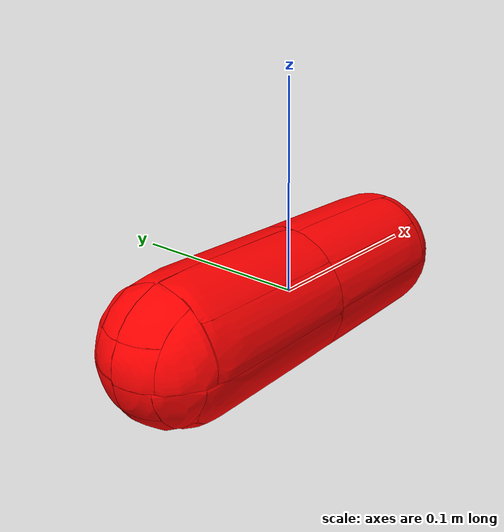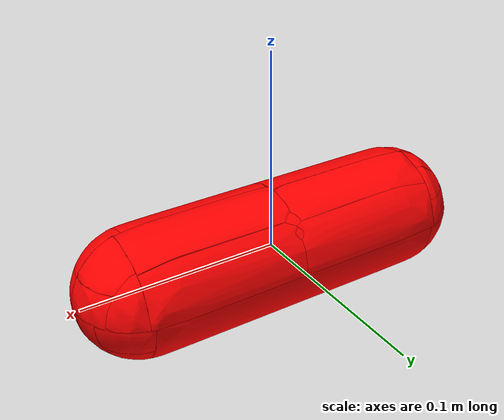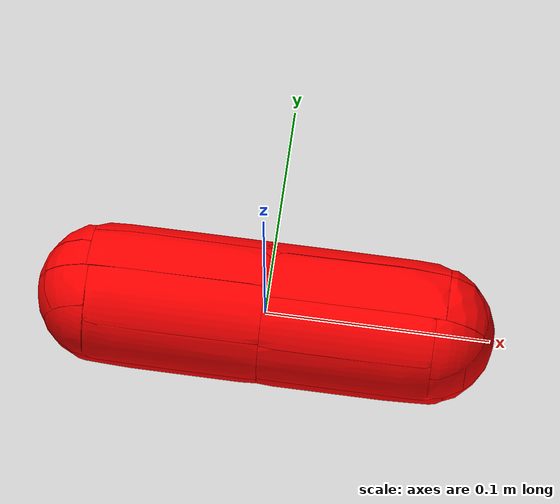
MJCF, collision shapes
<?xml version="1.0" ?>
<mujoco model="cold_cutting_1">
	<compiler meshdir="cold_cutting_1/meshes" texturedir="cold_cutting_1/textures" angle="radian" autolimits="true" balanceinertia="true" boundmass="0.000001" boundinertia="0.000001"/>
	<default>
		<default class="visual">
			<geom contype="0" conaffinity="0"/>
		</default>
		<default class="collision">
			<geom rgba="1.0 0.0 0.0 0.0"/>
		</default>
	</default>
	<asset>
		<mesh name="ColdCuttingMeat" file="obj/ColdCuttingMeat.obj" scale="1.0 1.0 1.0"/>
		<mesh name="ColdCuttingMeat_001" file="stl/ColdCuttingMeat_001.stl" scale="1.0 1.0 1.0"/>
		<mesh name="ColdCuttingExodermis" file="obj/ColdCuttingExodermis.obj" scale="1.0 1.0 1.0"/>
		<mesh name="ColdCuttingExodermis_001" file="stl/ColdCuttingExodermis_001.stl" scale="1.0 1.0 1.0"/>
		<mesh name="ColdCuttingExodermis_002" file="stl/ColdCuttingExodermis_002.stl" scale="1.0 1.0 1.0"/>
		<mesh name="ColdCuttingExodermis_003" file="stl/ColdCuttingExodermis_003.stl" scale="1.0 1.0 1.0"/>
		<mesh name="ColdCuttingExodermis_004" file="stl/ColdCuttingExodermis_004.stl" scale="1.0 1.0 1.0"/>
		<mesh name="ColdCuttingExodermis_005" file="stl/ColdCuttingExodermis_005.stl" scale="1.0 1.0 1.0"/>
		<mesh name="ColdCuttingExodermis_006" file="stl/ColdCuttingExodermis_006.stl" scale="1.0 1.0 1.0"/>
		<mesh name="ColdCuttingExodermis_007" file="stl/ColdCuttingExodermis_007.stl" scale="1.0 1.0 1.0"/>
		<mesh name="ColdCuttingExodermis_008" file="stl/ColdCuttingExodermis_008.stl" scale="1.0 1.0 1.0"/>
		<mesh name="ColdCuttingExodermis_009" file="stl/ColdCuttingExodermis_009.stl" scale="1.0 1.0 1.0"/>
		<mesh name="ColdCuttingExodermis_010" file="stl/ColdCuttingExodermis_010.stl" scale="1.0 1.0 1.0"/>
		<mesh name="ColdCuttingExodermis_011" file="stl/ColdCuttingExodermis_011.stl" scale="1.0 1.0 1.0"/>
		<mesh name="ColdCuttingExodermis_012" file="stl/ColdCuttingExodermis_012.stl" scale="1.0 1.0 1.0"/>
		<mesh name="ColdCuttingExodermis_013" file="stl/ColdCuttingExodermis_013.stl" scale="1.0 1.0 1.0"/>
		<mesh name="ColdCuttingExodermis_014" file="stl/ColdCuttingExodermis_014.stl" scale="1.0 1.0 1.0"/>
		<mesh name="ColdCuttingExodermis_015" file="stl/ColdCuttingExodermis_015.stl" scale="1.0 1.0 1.0"/>
		<mesh name="ColdCuttingExodermis_016" file="stl/ColdCuttingExodermis_016.stl" scale="1.0 1.0 1.0"/>
		<mesh name="ColdCuttingExodermis_017" file="stl/ColdCuttingExodermis_017.stl" scale="1.0 1.0 1.0"/>
		<mesh name="ColdCuttingExodermis_018" file="stl/ColdCuttingExodermis_018.stl" scale="1.0 1.0 1.0"/>
		<mesh name="ColdCuttingExodermis_019" file="stl/ColdCuttingExodermis_019.stl" scale="1.0 1.0 1.0"/>
		<mesh name="ColdCuttingExodermis_020" file="stl/ColdCuttingExodermis_020.stl" scale="1.0 1.0 1.0"/>
		<mesh name="ColdCuttingExodermis_021" file="stl/ColdCuttingExodermis_021.stl" scale="1.0 1.0 1.0"/>
		<mesh name="ColdCuttingExodermis_022" file="stl/ColdCuttingExodermis_022.stl" scale="1.0 1.0 1.0"/>
		<mesh name="ColdCuttingExodermis_023" file="stl/ColdCuttingExodermis_023.stl" scale="1.0 1.0 1.0"/>
		<mesh name="ColdCuttingExodermis_024" file="stl/ColdCuttingExodermis_024.stl" scale="1.0 1.0 1.0"/>
		<mesh name="ColdCuttingExodermis_025" file="stl/ColdCuttingExodermis_025.stl" scale="1.0 1.0 1.0"/>
		<mesh name="ColdCuttingExodermis_026" file="stl/ColdCuttingExodermis_026.stl" scale="1.0 1.0 1.0"/>
		<mesh name="ColdCuttingExodermis_027" file="stl/ColdCuttingExodermis_027.stl" scale="1.0 1.0 1.0"/>
		<mesh name="ColdCuttingExodermis_028" file="stl/ColdCuttingExodermis_028.stl" scale="1.0 1.0 1.0"/>
		<mesh name="ColdCuttingExodermis_029" file="stl/ColdCuttingExodermis_029.stl" scale="1.0 1.0 1.0"/>
		<mesh name="ColdCuttingExodermis_030" file="stl/ColdCuttingExodermis_030.stl" scale="1.0 1.0 1.0"/>
		<mesh name="ColdCuttingExodermis_031" file="stl/ColdCuttingExodermis_031.stl" scale="1.0 1.0 1.0"/>
		<mesh name="ColdCuttingExodermis_032" file="stl/ColdCuttingExodermis_032.stl" scale="1.0 1.0 1.0"/>
		<mesh name="ColdCuttingExodermis_033" file="stl/ColdCuttingExodermis_033.stl" scale="1.0 1.0 1.0"/>
		<mesh name="ColdCuttingExodermis_034" file="stl/ColdCuttingExodermis_034.stl" scale="1.0 1.0 1.0"/>
		<mesh name="ColdCuttingExodermis_035" file="stl/ColdCuttingExodermis_035.stl" scale="1.0 1.0 1.0"/>
		<mesh name="ColdCuttingExodermis_036" file="stl/ColdCuttingExodermis_036.stl" scale="1.0 1.0 1.0"/>
		<mesh name="ColdCuttingExodermis_037" file="stl/ColdCuttingExodermis_037.stl" scale="1.0 1.0 1.0"/>
		<mesh name="ColdCuttingExodermis_038" file="stl/ColdCuttingExodermis_038.stl" scale="1.0 1.0 1.0"/>
		<mesh name="ColdCuttingExodermis_039" file="stl/ColdCuttingExodermis_039.stl" scale="1.0 1.0 1.0"/>
		<mesh name="ColdCuttingExodermis_040" file="stl/ColdCuttingExodermis_040.stl" scale="1.0 1.0 1.0"/>
		<mesh name="ColdCuttingExodermis_041" file="stl/ColdCuttingExodermis_041.stl" scale="1.0 1.0 1.0"/>
		<material name="M_ColdCuttingMeat" texture="T_ColdCuttingMeat"/>
		<material name="M_ColdCuttingExodermis" texture="T_ColdCuttingExodermis"/>
		<texture name="T_ColdCuttingMeat" type="2d" file="T_ColdCuttingMeat.png"/>
		<texture name="T_ColdCuttingExodermis" type="2d" file="T_ColdCuttingExodermis.png"/>
	</asset>
	<worldbody>
		<body name="cold_cutting_1" pos="0.0 0.0 0.0" quat="1.0 0.0 0.0 0.0">
			<body name="cold_cutting_meat" pos="0.0 0.0 0.0" quat="1.0 0.0 0.0 0.0">
				<inertial mass="0.5316651463508606" pos="-1.3047480251771049e-06 -4.2225066863466054e-05 -4.222921052132733e-05" quat="0.9238739609718323 0.3826969563961029 8.981351129477844e-07 -2.013482117035892e-06" diaginertia="0.00023565333685837686 0.0016169100999832153 0.0016169962473213673"/>
				<geom name="ColdCuttingMeat" type="mesh" pos="0.0 0.0 0.0" quat="1.0 0.0 0.0 0.0" mesh="ColdCuttingMeat" material="M_ColdCuttingMeat" class="visual"/>
				<geom name="ColdCuttingMeat_001" type="mesh" pos="0.0 0.0 0.0" quat="1.0 0.0 0.0 0.0" mesh="ColdCuttingMeat_001" class="collision"/>
			</body>
			<body name="cold_cutting_exodermis" pos="0.0 0.0 0.0" quat="1.0 0.0 0.0 0.0">
				<inertial mass="0.029258714988827705" pos="1.9871227152634674e-07 -2.76368828053819e-05 -2.7639065592666157e-05" quat="0.9235755801200867 0.3834163546562195 5.397649260885373e-07 -1.7164622931886697e-06" diaginertia="2.5001927497214638e-05 0.00011326310050208122 0.00011326515959808603"/>
				<geom name="ColdCuttingExodermis" type="mesh" pos="0.0 0.0 0.0" quat="1.0 0.0 0.0 0.0" mesh="ColdCuttingExodermis" material="M_ColdCuttingExodermis" class="visual"/>
				<geom name="ColdCuttingExodermis_001" type="mesh" pos="0.0 0.0 0.0" quat="1.0 0.0 0.0 0.0" mesh="ColdCuttingExodermis_001" class="collision"/>
				<geom name="ColdCuttingExodermis_002" type="mesh" pos="0.0 0.0 0.0" quat="1.0 0.0 0.0 0.0" mesh="ColdCuttingExodermis_002" class="collision"/>
				<geom name="ColdCuttingExodermis_003" type="mesh" pos="0.0 0.0 0.0" quat="1.0 0.0 0.0 0.0" mesh="ColdCuttingExodermis_003" class="collision"/>
				<geom name="ColdCuttingExodermis_004" type="mesh" pos="0.0 0.0 0.0" quat="1.0 0.0 0.0 0.0" mesh="ColdCuttingExodermis_004" class="collision"/>
				<geom name="ColdCuttingExodermis_005" type="mesh" pos="0.0 0.0 0.0" quat="1.0 0.0 0.0 0.0" mesh="ColdCuttingExodermis_005" class="collision"/>
				<geom name="ColdCuttingExodermis_006" type="mesh" pos="0.0 0.0 0.0" quat="1.0 0.0 0.0 0.0" mesh="ColdCuttingExodermis_006" class="collision"/>
				<geom name="ColdCuttingExodermis_007" type="mesh" pos="0.0 0.0 0.0" quat="1.0 0.0 0.0 0.0" mesh="ColdCuttingExodermis_007" class="collision"/>
				<geom name="ColdCuttingExodermis_008" type="mesh" pos="0.0 0.0 0.0" quat="1.0 0.0 0.0 0.0" mesh="ColdCuttingExodermis_008" class="collision"/>
				<geom name="ColdCuttingExodermis_009" type="mesh" pos="0.0 0.0 0.0" quat="1.0 0.0 0.0 0.0" mesh="ColdCuttingExodermis_009" class="collision"/>
				<geom name="ColdCuttingExodermis_010" type="mesh" pos="0.0 0.0 0.0" quat="1.0 0.0 0.0 0.0" mesh="ColdCuttingExodermis_010" class="collision"/>
				<geom name="ColdCuttingExodermis_011" type="mesh" pos="0.0 0.0 0.0" quat="1.0 0.0 0.0 0.0" mesh="ColdCuttingExodermis_011" class="collision"/>
				<geom name="ColdCuttingExodermis_012" type="mesh" pos="0.0 0.0 0.0" quat="1.0 0.0 0.0 0.0" mesh="ColdCuttingExodermis_012" class="collision"/>
				<geom name="ColdCuttingExodermis_013" type="mesh" pos="0.0 0.0 0.0" quat="1.0 0.0 0.0 0.0" mesh="ColdCuttingExodermis_013" class="collision"/>
				<geom name="ColdCuttingExodermis_014" type="mesh" pos="0.0 0.0 0.0" quat="1.0 0.0 0.0 0.0" mesh="ColdCuttingExodermis_014" class="collision"/>
				<geom name="ColdCuttingExodermis_015" type="mesh" pos="0.0 0.0 0.0" quat="1.0 0.0 0.0 0.0" mesh="ColdCuttingExodermis_015" class="collision"/>
				<geom name="ColdCuttingExodermis_016" type="mesh" pos="0.0 0.0 0.0" quat="1.0 0.0 0.0 0.0" mesh="ColdCuttingExodermis_016" class="collision"/>
				<geom name="ColdCuttingExodermis_017" type="mesh" pos="0.0 0.0 0.0" quat="1.0 0.0 0.0 0.0" mesh="ColdCuttingExodermis_017" class="collision"/>
				<geom name="ColdCuttingExodermis_018" type="mesh" pos="0.0 0.0 0.0" quat="1.0 0.0 0.0 0.0" mesh="ColdCuttingExodermis_018" class="collision"/>
				<geom name="ColdCuttingExodermis_019" type="mesh" pos="0.0 0.0 0.0" quat="1.0 0.0 0.0 0.0" mesh="ColdCuttingExodermis_019" class="collision"/>
				<geom name="ColdCuttingExodermis_020" type="mesh" pos="0.0 0.0 0.0" quat="1.0 0.0 0.0 0.0" mesh="ColdCuttingExodermis_020" class="collision"/>
				<geom name="ColdCuttingExodermis_021" type="mesh" pos="0.0 0.0 0.0" quat="1.0 0.0 0.0 0.0" mesh="ColdCuttingExodermis_021" class="collision"/>
				<geom name="ColdCuttingExodermis_022" type="mesh" pos="0.0 0.0 0.0" quat="1.0 0.0 0.0 0.0" mesh="ColdCuttingExodermis_022" class="collision"/>
				<geom name="ColdCuttingExodermis_023" type="mesh" pos="0.0 0.0 0.0" quat="1.0 0.0 0.0 0.0" mesh="ColdCuttingExodermis_023" class="collision"/>
				<geom name="ColdCuttingExodermis_024" type="mesh" pos="0.0 0.0 0.0" quat="1.0 0.0 0.0 0.0" mesh="ColdCuttingExodermis_024" class="collision"/>
				<geom name="ColdCuttingExodermis_025" type="mesh" pos="0.0 0.0 0.0" quat="1.0 0.0 0.0 0.0" mesh="ColdCuttingExodermis_025" class="collision"/>
				<geom name="ColdCuttingExodermis_026" type="mesh" pos="0.0 0.0 0.0" quat="1.0 0.0 0.0 0.0" mesh="ColdCuttingExodermis_026" class="collision"/>
				<geom name="ColdCuttingExodermis_027" type="mesh" pos="0.0 0.0 0.0" quat="1.0 0.0 0.0 0.0" mesh="ColdCuttingExodermis_027" class="collision"/>
				<geom name="ColdCuttingExodermis_028" type="mesh" pos="0.0 0.0 0.0" quat="1.0 0.0 0.0 0.0" mesh="ColdCuttingExodermis_028" class="collision"/>
				<geom name="ColdCuttingExodermis_029" type="mesh" pos="0.0 0.0 0.0" quat="1.0 0.0 0.0 0.0" mesh="ColdCuttingExodermis_029" class="collision"/>
				<geom name="ColdCuttingExodermis_030" type="mesh" pos="0.0 0.0 0.0" quat="1.0 0.0 0.0 0.0" mesh="ColdCuttingExodermis_030" class="collision"/>
				<geom name="ColdCuttingExodermis_031" type="mesh" pos="0.0 0.0 0.0" quat="1.0 0.0 0.0 0.0" mesh="ColdCuttingExodermis_031" class="collision"/>
				<geom name="ColdCuttingExodermis_032" type="mesh" pos="0.0 0.0 0.0" quat="1.0 0.0 0.0 0.0" mesh="ColdCuttingExodermis_032" class="collision"/>
				<geom name="ColdCuttingExodermis_033" type="mesh" pos="0.0 0.0 0.0" quat="1.0 0.0 0.0 0.0" mesh="ColdCuttingExodermis_033" class="collision"/>
				<geom name="ColdCuttingExodermis_034" type="mesh" pos="0.0 0.0 0.0" quat="1.0 0.0 0.0 0.0" mesh="ColdCuttingExodermis_034" class="collision"/>
				<geom name="ColdCuttingExodermis_035" type="mesh" pos="0.0 0.0 0.0" quat="1.0 0.0 0.0 0.0" mesh="ColdCuttingExodermis_035" class="collision"/>
				<geom name="ColdCuttingExodermis_036" type="mesh" pos="0.0 0.0 0.0" quat="1.0 0.0 0.0 0.0" mesh="ColdCuttingExodermis_036" class="collision"/>
				<geom name="ColdCuttingExodermis_037" type="mesh" pos="0.0 0.0 0.0" quat="1.0 0.0 0.0 0.0" mesh="ColdCuttingExodermis_037" class="collision"/>
				<geom name="ColdCuttingExodermis_038" type="mesh" pos="0.0 0.0 0.0" quat="1.0 0.0 0.0 0.0" mesh="ColdCuttingExodermis_038" class="collision"/>
				<geom name="ColdCuttingExodermis_039" type="mesh" pos="0.0 0.0 0.0" quat="1.0 0.0 0.0 0.0" mesh="ColdCuttingExodermis_039" class="collision"/>
				<geom name="ColdCuttingExodermis_040" type="mesh" pos="0.0 0.0 0.0" quat="1.0 0.0 0.0 0.0" mesh="ColdCuttingExodermis_040" class="collision"/>
				<geom name="ColdCuttingExodermis_041" type="mesh" pos="0.0 0.0 0.0" quat="1.0 0.0 0.0 0.0" mesh="ColdCuttingExodermis_041" class="collision"/>
			</body>
		</body>
	</worldbody>
	<equality/>
</mujoco>
